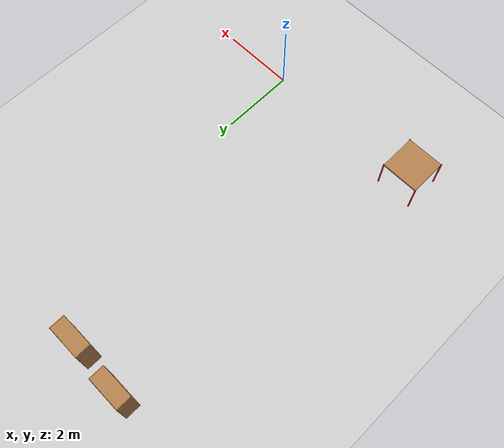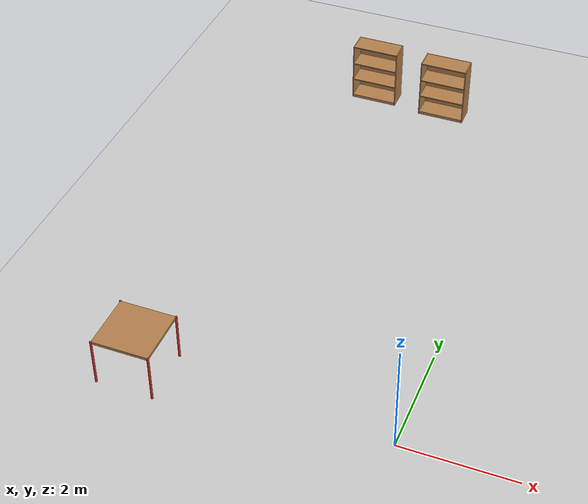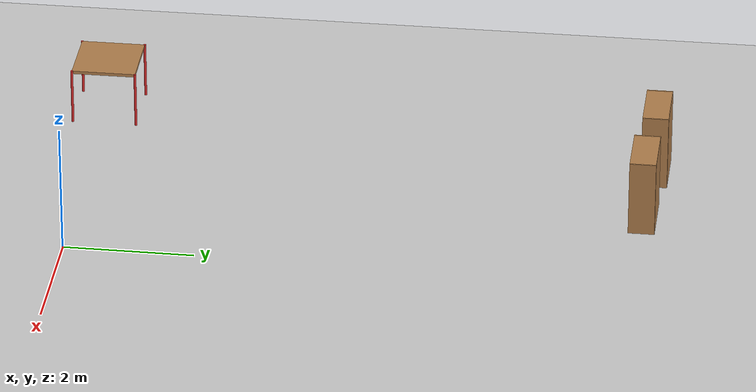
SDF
<sdf version="1.6">
 <world name="default">
  <model name="ground_plane">
   <static>1</static>
   <link name="link">
    <collision name="collision">
     <geometry><plane><normal>0 0 1</normal><size>100 100</size></plane></geometry>
     <surface><friction><ode><mu>100</mu><mu2>50</mu2></ode></friction></surface>
    </collision>
    <visual name="visual">
     <cast_shadows>0</cast_shadows>
     <geometry><plane><normal>0 0 1</normal><size>100 100</size></plane></geometry>
     <material>
      <script><uri>file://media/materials/scripts/gazebo.material</uri><name>Gazebo/Grey</name></script>
     </material>
    </visual>
    <velocity_decay><linear>0</linear><angular>0</angular></velocity_decay>
   </link>
  </model>
  <model name="bookshelf">
   <static>1</static>
   <link name="link">
    <inertial><mass>1</mass></inertial>
    <collision name="back">
     <pose>0 0.005 0.6 0 -0 0</pose>
     <geometry><box><size>0.9 0.01 1.2</size></box></geometry>
    </collision>
    <visual name="visual1">
     <pose>0 0.005 0.6 0 -0 0</pose>
     <geometry><box><size>0.9 0.01 1.2</size></box></geometry>
     <material>
      <script><uri>file://media/materials/scripts/gazebo.material</uri><name>Gazebo/Wood</name></script>
     </material>
    </visual>
    <collision name="left_side">
     <pose>0.45 -0.195 0.6 0 -0 0</pose>
     <geometry><box><size>0.02 0.4 1.2</size></box></geometry>
    </collision>
    <visual name="visual2">
     <pose>0.45 -0.195 0.6 0 -0 0</pose>
     <geometry><box><size>0.02 0.4 1.2</size></box></geometry>
     <material>
      <script><uri>file://media/materials/scripts/gazebo.material</uri><name>Gazebo/Wood</name></script>
     </material>
    </visual>
    <collision name="right_side">
     <pose>-0.45 -0.195 0.6 0 -0 0</pose>
     <geometry><box><size>0.02 0.4 1.2</size></box></geometry>
    </collision>
    <visual name="visual3">
     <pose>-0.45 -0.195 0.6 0 -0 0</pose>
     <geometry><box><size>0.02 0.4 1.2</size></box></geometry>
     <material>
      <script><uri>file://media/materials/scripts/gazebo.material</uri><name>Gazebo/Wood</name></script>
     </material>
    </visual>
    <collision name="bottom">
     <pose>0 -0.195 0.03 0 -0 0</pose>
     <geometry><box><size>0.88 0.4 0.06</size></box></geometry>
    </collision>
    <visual name="visual4">
     <pose>0 -0.195 0.03 0 -0 0</pose>
     <geometry><box><size>0.88 0.4 0.06</size></box></geometry>
     <material>
      <script><uri>file://media/materials/scripts/gazebo.material</uri><name>Gazebo/Wood</name></script>
     </material>
    </visual>
    <collision name="top">
     <pose>0 -0.195 1.19 0 -0 0</pose>
     <geometry><box><size>0.88 0.4 0.02</size></box></geometry>
    </collision>
    <visual name="visual5">
     <pose>0 -0.195 1.19 0 -0 0</pose>
     <geometry><box><size>0.88 0.4 0.02</size></box></geometry>
     <material>
      <script><uri>file://media/materials/scripts/gazebo.material</uri><name>Gazebo/Wood</name></script>
     </material>
    </visual>
    <collision name="low_shelf">
     <pose>0 -0.195 0.43 0 -0 0</pose>
     <geometry><box><size>0.88 0.4 0.02</size></box></geometry>
    </collision>
    <visual name="visual6">
     <pose>0 -0.195 0.43 0 -0 0</pose>
     <geometry><box><size>0.88 0.4 0.02</size></box></geometry>
     <material>
      <script><uri>file://media/materials/scripts/gazebo.material</uri><name>Gazebo/Wood</name></script>
     </material>
    </visual>
    <collision name="high_shelf">
     <pose>0 -0.195 0.8 0 -0 0</pose>
     <geometry><box><size>0.88 0.4 0.02</size></box></geometry>
    </collision>
    <visual name="visual7">
     <pose>0 -0.195 0.8 0 -0 0</pose>
     <geometry><box><size>0.88 0.4 0.02</size></box></geometry>
     <material>
      <script><uri>file://media/materials/scripts/gazebo.material</uri><name>Gazebo/Wood</name></script>
     </material>
    </visual>
    <velocity_decay><linear>0</linear><angular>0</angular></velocity_decay>
   </link>
   <pose>-3.36732 8.91288 0 0 -0 0</pose>
  </model>
  <model name="bookshelf_0">
   <static>1</static>
   <link name="link">
    <inertial><mass>1</mass></inertial>
    <collision name="back">
     <pose>0 0.005 0.6 0 -0 0</pose>
     <geometry><box><size>0.9 0.01 1.2</size></box></geometry>
    </collision>
    <visual name="visual1">
     <pose>0 0.005 0.6 0 -0 0</pose>
     <geometry><box><size>0.9 0.01 1.2</size></box></geometry>
     <material>
      <script><uri>file://media/materials/scripts/gazebo.material</uri><name>Gazebo/Wood</name></script>
     </material>
    </visual>
    <collision name="left_side">
     <pose>0.45 -0.195 0.6 0 -0 0</pose>
     <geometry><box><size>0.02 0.4 1.2</size></box></geometry>
    </collision>
    <visual name="visual2">
     <pose>0.45 -0.195 0.6 0 -0 0</pose>
     <geometry><box><size>0.02 0.4 1.2</size></box></geometry>
     <material>
      <script><uri>file://media/materials/scripts/gazebo.material</uri><name>Gazebo/Wood</name></script>
     </material>
    </visual>
    <collision name="right_side">
     <pose>-0.45 -0.195 0.6 0 -0 0</pose>
     <geometry><box><size>0.02 0.4 1.2</size></box></geometry>
    </collision>
    <visual name="visual3">
     <pose>-0.45 -0.195 0.6 0 -0 0</pose>
     <geometry><box><size>0.02 0.4 1.2</size></box></geometry>
     <material>
      <script><uri>file://media/materials/scripts/gazebo.material</uri><name>Gazebo/Wood</name></script>
     </material>
    </visual>
    <collision name="bottom">
     <pose>0 -0.195 0.03 0 -0 0</pose>
     <geometry><box><size>0.88 0.4 0.06</size></box></geometry>
    </collision>
    <visual name="visual4">
     <pose>0 -0.195 0.03 0 -0 0</pose>
     <geometry><box><size>0.88 0.4 0.06</size></box></geometry>
     <material>
      <script><uri>file://media/materials/scripts/gazebo.material</uri><name>Gazebo/Wood</name></script>
     </material>
    </visual>
    <collision name="top">
     <pose>0 -0.195 1.19 0 -0 0</pose>
     <geometry><box><size>0.88 0.4 0.02</size></box></geometry>
    </collision>
    <visual name="visual5">
     <pose>0 -0.195 1.19 0 -0 0</pose>
     <geometry><box><size>0.88 0.4 0.02</size></box></geometry>
     <material>
      <script><uri>file://media/materials/scripts/gazebo.material</uri><name>Gazebo/Wood</name></script>
     </material>
    </visual>
    <collision name="low_shelf">
     <pose>0 -0.195 0.43 0 -0 0</pose>
     <geometry><box><size>0.88 0.4 0.02</size></box></geometry>
    </collision>
    <visual name="visual6">
     <pose>0 -0.195 0.43 0 -0 0</pose>
     <geometry><box><size>0.88 0.4 0.02</size></box></geometry>
     <material>
      <script><uri>file://media/materials/scripts/gazebo.material</uri><name>Gazebo/Wood</name></script>
     </material>
    </visual>
    <collision name="high_shelf">
     <pose>0 -0.195 0.8 0 -0 0</pose>
     <geometry><box><size>0.88 0.4 0.02</size></box></geometry>
    </collision>
    <visual name="visual7">
     <pose>0 -0.195 0.8 0 -0 0</pose>
     <geometry><box><size>0.88 0.4 0.02</size></box></geometry>
     <material>
      <script><uri>file://media/materials/scripts/gazebo.material</uri><name>Gazebo/Wood</name></script>
     </material>
    </visual>
    <velocity_decay><linear>0</linear><angular>0</angular></velocity_decay>
   </link>
   <pose>-1.91729 8.83127 0 0 -0 0</pose>
  </model>
  <model name="table_model">
   <link name="table_top_link">
    <inertial>
     <pose>0.8 0 0.535 0 -0 0</pose>
     <mass>50</mass>
     <inertia><ixx>12.845</ixx><ixy>0</ixy><ixz>0</ixz><iyy>12.845</iyy><iyz>0</iyz><izz>21.04</izz></inertia>
    </inertial>
    <collision name="table_top_link_collision">
     <pose>0.8 0 0.875 0 -0 0</pose>
     <geometry><box><size>1 1 0.05</size></box></geometry>
     <surface>
      <contact><ode><kp>1e+06</kp><kd>1</kd></ode></contact>
      <friction><ode><mu>50</mu><mu2>50</mu2></ode></friction>
     </surface>
    </collision>
    <collision name="table_top_link_fixed_joint_lump__leg1_link_collision_1">
     <pose>1.3 0.5 0.45 0 -0 0</pose>
     <geometry><cylinder><length>0.9</length><radius>0.02</radius></cylinder></geometry>
     <surface>
      <contact><ode><kp>1e+07</kp><kd>1</kd></ode></contact>
      <friction><ode><mu>1000</mu><mu2>1000</mu2></ode></friction>
     </surface>
    </collision>
    <collision name="table_top_link_fixed_joint_lump__leg2_link_collision_2">
     <pose>0.3 0.5 0.45 0 -0 0</pose>
     <geometry><cylinder><length>0.9</length><radius>0.02</radius></cylinder></geometry>
     <surface>
      <contact><ode><kp>1e+07</kp><kd>1</kd></ode></contact>
      <friction><ode><mu>1000</mu><mu2>1000</mu2></ode></friction>
     </surface>
    </collision>
    <collision name="table_top_link_fixed_joint_lump__leg3_link_collision_3">
     <pose>1.3 -0.5 0.45 0 -0 0</pose>
     <geometry><cylinder><length>0.9</length><radius>0.02</radius></cylinder></geometry>
     <surface>
      <contact><ode><kp>1e+07</kp><kd>1</kd></ode></contact>
      <friction><ode><mu>1000</mu><mu2>1000</mu2></ode></friction>
     </surface>
    </collision>
    <collision name="table_top_link_fixed_joint_lump__leg4_link_collision_4">
     <pose>0.3 -0.5 0.45 0 -0 0</pose>
     <geometry><cylinder><length>0.9</length><radius>0.02</radius></cylinder></geometry>
     <surface>
      <contact><ode><kp>1e+07</kp><kd>1</kd></ode></contact>
      <friction><ode><mu>1000</mu><mu2>1000</mu2></ode></friction>
     </surface>
    </collision>
    <visual name="table_top_link_visual">
     <pose>0.8 0 0.875 0 -0 0</pose>
     <geometry><box><size>1 1 0.05</size></box></geometry>
     <material>
      <script><name>Gazebo/Wood</name><uri>file://media/materials/scripts/gazebo.material</uri></script>
     </material>
    </visual>
    <visual name="table_top_link_fixed_joint_lump__leg1_link_visual_1">
     <pose>1.3 0.5 0.45 0 -0 0</pose>
     <geometry><cylinder><length>0.9</length><radius>0.02</radius></cylinder></geometry>
     <material>
      <script><name>Gazebo/Red</name><uri>file://media/materials/scripts/gazebo.material</uri></script>
     </material>
    </visual>
    <visual name="table_top_link_fixed_joint_lump__leg2_link_visual_2">
     <pose>0.3 0.5 0.45 0 -0 0</pose>
     <geometry><cylinder><length>0.9</length><radius>0.02</radius></cylinder></geometry>
     <material>
      <script><name>Gazebo/Red</name><uri>file://media/materials/scripts/gazebo.material</uri></script>
     </material>
    </visual>
    <visual name="table_top_link_fixed_joint_lump__leg3_link_visual_3">
     <pose>1.3 -0.5 0.45 0 -0 0</pose>
     <geometry><cylinder><length>0.9</length><radius>0.02</radius></cylinder></geometry>
     <material>
      <script><name>Gazebo/Red</name><uri>file://media/materials/scripts/gazebo.material</uri></script>
     </material>
    </visual>
    <visual name="table_top_link_fixed_joint_lump__leg4_link_visual_4">
     <pose>0.3 -0.5 0.45 0 -0 0</pose>
     <geometry><cylinder><length>0.9</length><radius>0.02</radius></cylinder></geometry>
     <material>
      <script><name>Gazebo/Red</name><uri>file://media/materials/scripts/gazebo.material</uri></script>
     </material>
    </visual>
    <self_collide>1</self_collide>
   </link>
   <static>1</static>
   <pose>-5.2 0 0 0 -0 0</pose>
  </model>
 </world>
</sdf>
